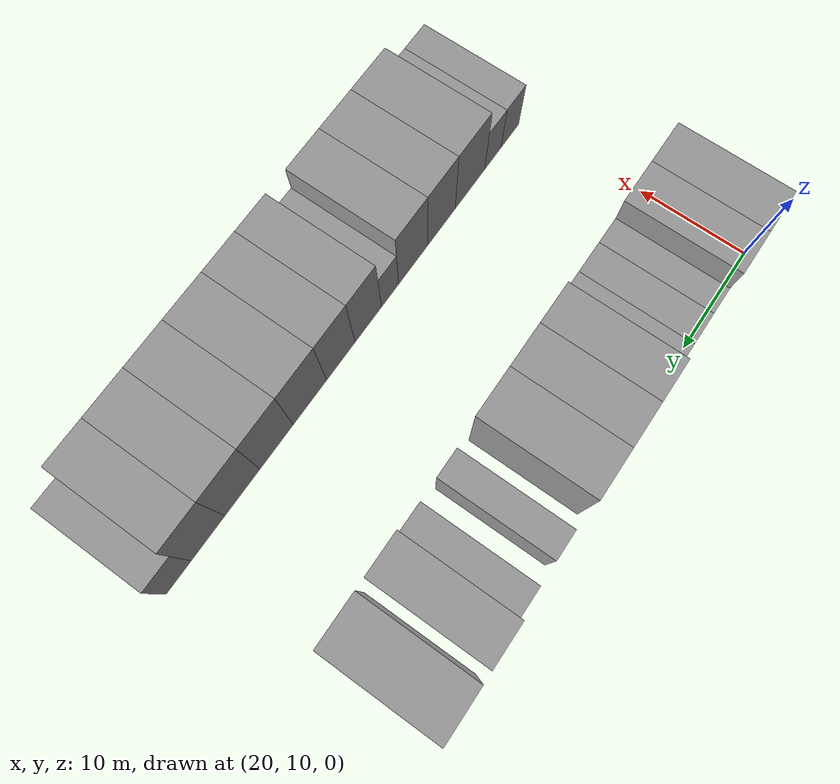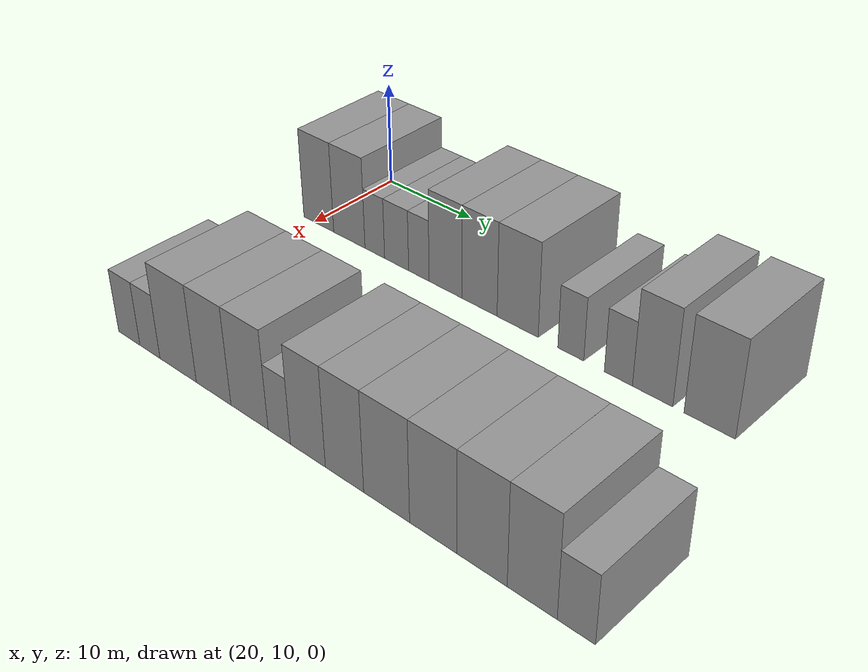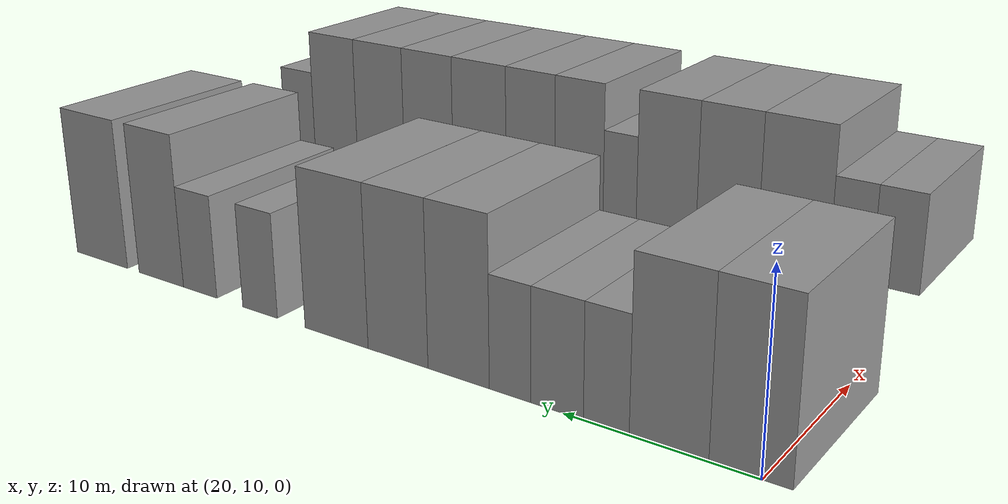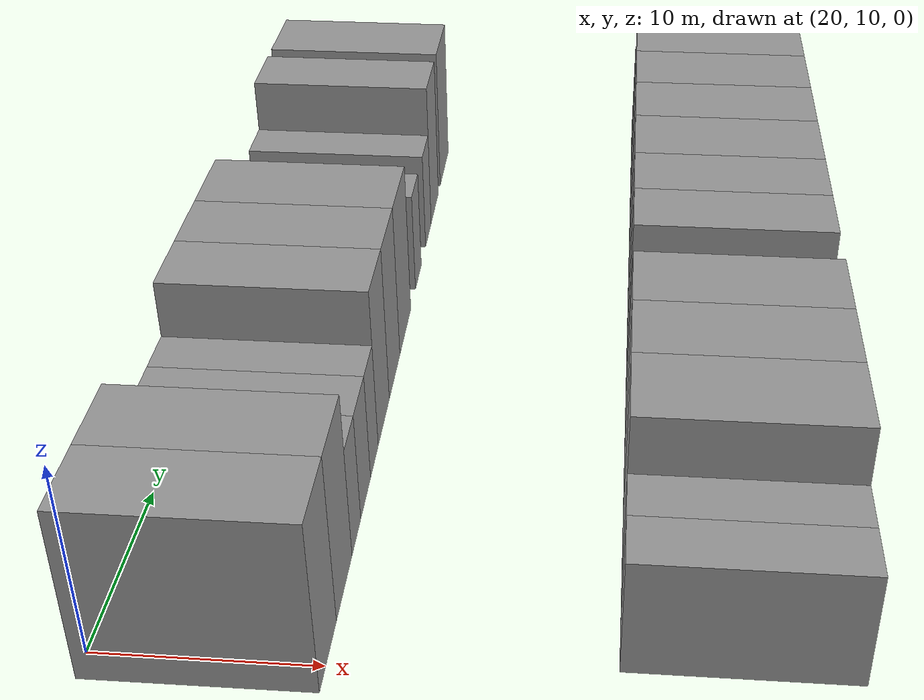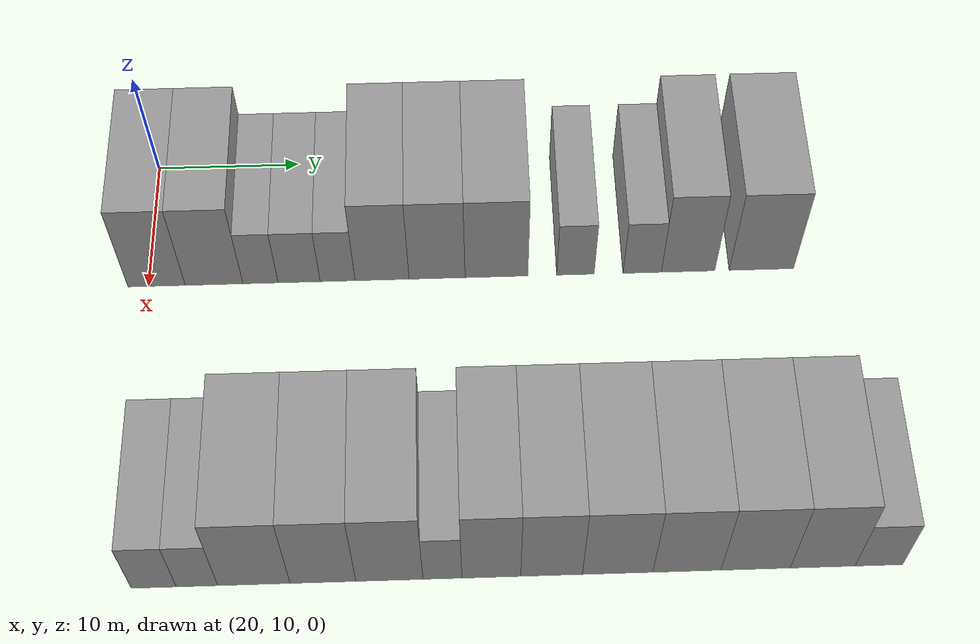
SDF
<sdf version="1.6">
 <world name="default">
  <model name="building_47">
   <static>1</static>
   <pose>25.0000 10.5509 0 0.000000 0.000000 0.000000</pose>
   <link name="link">
    <pose>0 0 4.50 0 0 0</pose>
    <collision name="collision"><geometry><box><size>10.0000 3.9219 9.0000</size></box></geometry></collision>
    <visual name="visual">
     <cast_shadows>0</cast_shadows>
     <geometry><box><size>10.0000 3.9219 9.0000</size></box></geometry>
     <material>
      <script>
       <uri>model://grey_wall/materials/scripts</uri>
       <uri>model://grey_wall/materials/textures</uri>
       <name>vrc/grey_wall</name>
      </script>
     </material>
    </visual>
   </link>
  </model>
  <model name="building_48">
   <static>1</static>
   <pose>25.0000 14.4988 0 0.000000 0.000000 0.000000</pose>
   <link name="link">
    <pose>0 0 4.50 0 0 0</pose>
    <collision name="collision"><geometry><box><size>10.0000 3.9739 9.0000</size></box></geometry></collision>
    <visual name="visual">
     <cast_shadows>0</cast_shadows>
     <geometry><box><size>10.0000 3.9739 9.0000</size></box></geometry>
     <material>
      <script>
       <uri>model://grey_wall/materials/scripts</uri>
       <uri>model://grey_wall/materials/textures</uri>
       <name>vrc/grey_wall</name>
      </script>
     </material>
    </visual>
   </link>
  </model>
  <model name="building_49">
   <static>1</static>
   <pose>25.0000 17.6950 0 0.000000 0.000000 0.000000</pose>
   <link name="link">
    <pose>0 0 3.00 0 0 0</pose>
    <collision name="collision"><geometry><box><size>10.0000 2.4185 6.0000</size></box></geometry></collision>
    <visual name="visual">
     <cast_shadows>0</cast_shadows>
     <geometry><box><size>10.0000 2.4185 6.0000</size></box></geometry>
     <material>
      <script>
       <uri>model://grey_wall/materials/scripts</uri>
       <uri>model://grey_wall/materials/textures</uri>
       <name>vrc/grey_wall</name>
      </script>
     </material>
    </visual>
   </link>
  </model>
  <model name="building_50">
   <static>1</static>
   <pose>25.0000 20.3509 0 0.000000 0.000000 0.000000</pose>
   <link name="link">
    <pose>0 0 3.00 0 0 0</pose>
    <collision name="collision"><geometry><box><size>10.0000 2.8933 6.0000</size></box></geometry></collision>
    <visual name="visual">
     <cast_shadows>0</cast_shadows>
     <geometry><box><size>10.0000 2.8933 6.0000</size></box></geometry>
     <material>
      <script>
       <uri>model://grey_wall/materials/scripts</uri>
       <uri>model://grey_wall/materials/textures</uri>
       <name>vrc/grey_wall</name>
      </script>
     </material>
    </visual>
   </link>
  </model>
  <model name="building_51">
   <static>1</static>
   <pose>25.0000 22.9984 0 0.000000 0.000000 0.000000</pose>
   <link name="link">
    <pose>0 0 3.00 0 0 0</pose>
    <collision name="collision"><geometry><box><size>10.0000 2.4018 6.0000</size></box></geometry></collision>
    <visual name="visual">
     <cast_shadows>0</cast_shadows>
     <geometry><box><size>10.0000 2.4018 6.0000</size></box></geometry>
     <material>
      <script>
       <uri>model://grey_wall/materials/scripts</uri>
       <uri>model://grey_wall/materials/textures</uri>
       <name>vrc/grey_wall</name>
      </script>
     </material>
    </visual>
   </link>
  </model>
  <model name="building_52">
   <static>1</static>
   <pose>25.0000 26.0617 0 0.000000 0.000000 0.000000</pose>
   <link name="link">
    <pose>0 0 4.50 0 0 0</pose>
    <collision name="collision"><geometry><box><size>10.0000 3.7248 9.0000</size></box></geometry></collision>
    <visual name="visual">
     <cast_shadows>0</cast_shadows>
     <geometry><box><size>10.0000 3.7248 9.0000</size></box></geometry>
     <material>
      <script>
       <uri>model://grey_wall/materials/scripts</uri>
       <uri>model://grey_wall/materials/textures</uri>
       <name>vrc/grey_wall</name>
      </script>
     </material>
    </visual>
   </link>
  </model>
  <model name="building_53">
   <static>1</static>
   <pose>25.0000 29.8570 0 0.000000 0.000000 0.000000</pose>
   <link name="link">
    <pose>0 0 4.50 0 0 0</pose>
    <collision name="collision"><geometry><box><size>10.0000 3.8659 9.0000</size></box></geometry></collision>
    <visual name="visual">
     <cast_shadows>0</cast_shadows>
     <geometry><box><size>10.0000 3.8659 9.0000</size></box></geometry>
     <material>
      <script>
       <uri>model://grey_wall/materials/scripts</uri>
       <uri>model://grey_wall/materials/textures</uri>
       <name>vrc/grey_wall</name>
      </script>
     </material>
    </visual>
   </link>
  </model>
  <model name="building_54">
   <static>1</static>
   <pose>25.0000 33.9565 0 0.000000 0.000000 0.000000</pose>
   <link name="link">
    <pose>0 0 4.50 0 0 0</pose>
    <collision name="collision"><geometry><box><size>10.0000 4.3330 9.0000</size></box></geometry></collision>
    <visual name="visual">
     <cast_shadows>0</cast_shadows>
     <geometry><box><size>10.0000 4.3330 9.0000</size></box></geometry>
     <material>
      <script>
       <uri>model://grey_wall/materials/scripts</uri>
       <uri>model://grey_wall/materials/textures</uri>
       <name>vrc/grey_wall</name>
      </script>
     </material>
    </visual>
   </link>
  </model>
  <model name="building_55">
   <static>1</static>
   <pose>25.0000 39.4166 0 0.000000 0.000000 0.000000</pose>
   <link name="link">
    <pose>0 0 3.00 0 0 0</pose>
    <collision name="collision"><geometry><box><size>10.0000 2.5872 6.0000</size></box></geometry></collision>
    <visual name="visual">
     <cast_shadows>0</cast_shadows>
     <geometry><box><size>10.0000 2.5872 6.0000</size></box></geometry>
     <material>
      <script>
       <uri>model://grey_wall/materials/scripts</uri>
       <uri>model://grey_wall/materials/textures</uri>
       <name>vrc/grey_wall</name>
      </script>
     </material>
    </visual>
   </link>
  </model>
  <model name="building_56">
   <static>1</static>
   <pose>25.0000 44.0428 0 0.000000 0.000000 0.000000</pose>
   <link name="link">
    <pose>0 0 3.00 0 0 0</pose>
    <collision name="collision"><geometry><box><size>10.0000 2.6652 6.0000</size></box></geometry></collision>
    <visual name="visual">
     <cast_shadows>0</cast_shadows>
     <geometry><box><size>10.0000 2.6652 6.0000</size></box></geometry>
     <material>
      <script>
       <uri>model://grey_wall/materials/scripts</uri>
       <uri>model://grey_wall/materials/textures</uri>
       <name>vrc/grey_wall</name>
      </script>
     </material>
    </visual>
   </link>
  </model>
  <model name="building_57">
   <static>1</static>
   <pose>25.0000 47.2270 0 0.000000 0.000000 0.000000</pose>
   <link name="link">
    <pose>0 0 4.50 0 0 0</pose>
    <collision name="collision"><geometry><box><size>10.0000 3.7030 9.0000</size></box></geometry></collision>
    <visual name="visual">
     <cast_shadows>0</cast_shadows>
     <geometry><box><size>10.0000 3.7030 9.0000</size></box></geometry>
     <material>
      <script>
       <uri>model://grey_wall/materials/scripts</uri>
       <uri>model://grey_wall/materials/textures</uri>
       <name>vrc/grey_wall</name>
      </script>
     </material>
    </visual>
   </link>
  </model>
  <model name="building_58">
   <static>1</static>
   <pose>25.0000 52.3160 0 0.000000 0.000000 0.000000</pose>
   <link name="link">
    <pose>0 0 4.50 0 0 0</pose>
    <collision name="collision"><geometry><box><size>10.0000 4.4752 9.0000</size></box></geometry></collision>
    <visual name="visual">
     <cast_shadows>0</cast_shadows>
     <geometry><box><size>10.0000 4.4752 9.0000</size></box></geometry>
     <material>
      <script>
       <uri>model://grey_wall/materials/scripts</uri>
       <uri>model://grey_wall/materials/textures</uri>
       <name>vrc/grey_wall</name>
      </script>
     </material>
    </visual>
   </link>
  </model>
  <model name="building_152">
   <static>1</static>
   <pose>47.0000 11.9845 0 0.000000 0.000000 0.000000</pose>
   <link name="link">
    <pose>0 0 3.00 0 0 0</pose>
    <collision name="collision"><geometry><box><size>10.0000 2.7790 6.0000</size></box></geometry></collision>
    <visual name="visual">
     <cast_shadows>0</cast_shadows>
     <geometry><box><size>10.0000 2.7790 6.0000</size></box></geometry>
     <material>
      <script>
       <uri>model://grey_wall/materials/scripts</uri>
       <uri>model://grey_wall/materials/textures</uri>
       <name>vrc/grey_wall</name>
      </script>
     </material>
    </visual>
   </link>
  </model>
  <model name="building_153">
   <static>1</static>
   <pose>47.0000 14.6560 0 0.000000 0.000000 0.000000</pose>
   <link name="link">
    <pose>0 0 3.00 0 0 0</pose>
    <collision name="collision"><geometry><box><size>10.0000 2.5641 6.0000</size></box></geometry></collision>
    <visual name="visual">
     <cast_shadows>0</cast_shadows>
     <geometry><box><size>10.0000 2.5641 6.0000</size></box></geometry>
     <material>
      <script>
       <uri>model://grey_wall/materials/scripts</uri>
       <uri>model://grey_wall/materials/textures</uri>
       <name>vrc/grey_wall</name>
      </script>
     </material>
    </visual>
   </link>
  </model>
  <model name="building_154">
   <static>1</static>
   <pose>47.0000 18.1766 0 0.000000 0.000000 0.000000</pose>
   <link name="link">
    <pose>0 0 4.50 0 0 0</pose>
    <collision name="collision"><geometry><box><size>10.0000 4.4769 9.0000</size></box></geometry></collision>
    <visual name="visual">
     <cast_shadows>0</cast_shadows>
     <geometry><box><size>10.0000 4.4769 9.0000</size></box></geometry>
     <material>
      <script>
       <uri>model://grey_wall/materials/scripts</uri>
       <uri>model://grey_wall/materials/textures</uri>
       <name>vrc/grey_wall</name>
      </script>
     </material>
    </visual>
   </link>
  </model>
  <model name="building_155">
   <static>1</static>
   <pose>47.0000 22.4522 0 0.000000 0.000000 0.000000</pose>
   <link name="link">
    <pose>0 0 4.50 0 0 0</pose>
    <collision name="collision"><geometry><box><size>10.0000 4.0743 9.0000</size></box></geometry></collision>
    <visual name="visual">
     <cast_shadows>0</cast_shadows>
     <geometry><box><size>10.0000 4.0743 9.0000</size></box></geometry>
     <material>
      <script>
       <uri>model://grey_wall/materials/scripts</uri>
       <uri>model://grey_wall/materials/textures</uri>
       <name>vrc/grey_wall</name>
      </script>
     </material>
    </visual>
   </link>
  </model>
  <model name="building_156">
   <static>1</static>
   <pose>47.0000 26.5751 0 0.000000 0.000000 0.000000</pose>
   <link name="link">
    <pose>0 0 4.50 0 0 0</pose>
    <collision name="collision"><geometry><box><size>10.0000 4.1716 9.0000</size></box></geometry></collision>
    <visual name="visual">
     <cast_shadows>0</cast_shadows>
     <geometry><box><size>10.0000 4.1716 9.0000</size></box></geometry>
     <material>
      <script>
       <uri>model://grey_wall/materials/scripts</uri>
       <uri>model://grey_wall/materials/textures</uri>
       <name>vrc/grey_wall</name>
      </script>
     </material>
    </visual>
   </link>
  </model>
  <model name="building_157">
   <static>1</static>
   <pose>47.0000 29.8698 0 0.000000 0.000000 0.000000</pose>
   <link name="link">
    <pose>0 0 3.00 0 0 0</pose>
    <collision name="collision"><geometry><box><size>10.0000 2.4178 6.0000</size></box></geometry></collision>
    <visual name="visual">
     <cast_shadows>0</cast_shadows>
     <geometry><box><size>10.0000 2.4178 6.0000</size></box></geometry>
     <material>
      <script>
       <uri>model://grey_wall/materials/scripts</uri>
       <uri>model://grey_wall/materials/textures</uri>
       <name>vrc/grey_wall</name>
      </script>
     </material>
    </visual>
   </link>
  </model>
  <model name="building_158">
   <static>1</static>
   <pose>47.0000 32.9076 0 0.000000 0.000000 0.000000</pose>
   <link name="link">
    <pose>0 0 4.50 0 0 0</pose>
    <collision name="collision"><geometry><box><size>10.0000 3.6577 9.0000</size></box></geometry></collision>
    <visual name="visual">
     <cast_shadows>0</cast_shadows>
     <geometry><box><size>10.0000 3.6577 9.0000</size></box></geometry>
     <material>
      <script>
       <uri>model://grey_wall/materials/scripts</uri>
       <uri>model://grey_wall/materials/textures</uri>
       <name>vrc/grey_wall</name>
      </script>
     </material>
    </visual>
   </link>
  </model>
  <model name="building_159">
   <static>1</static>
   <pose>47.0000 36.6564 0 0.000000 0.000000 0.000000</pose>
   <link name="link">
    <pose>0 0 4.50 0 0 0</pose>
    <collision name="collision"><geometry><box><size>10.0000 3.8399 9.0000</size></box></geometry></collision>
    <visual name="visual">
     <cast_shadows>0</cast_shadows>
     <geometry><box><size>10.0000 3.8399 9.0000</size></box></geometry>
     <material>
      <script>
       <uri>model://grey_wall/materials/scripts</uri>
       <uri>model://grey_wall/materials/textures</uri>
       <name>vrc/grey_wall</name>
      </script>
     </material>
    </visual>
   </link>
  </model>
  <model name="building_160">
   <static>1</static>
   <pose>47.0000 40.7709 0 0.000000 0.000000 0.000000</pose>
   <link name="link">
    <pose>0 0 4.50 0 0 0</pose>
    <collision name="collision"><geometry><box><size>10.0000 4.3893 9.0000</size></box></geometry></collision>
    <visual name="visual">
     <cast_shadows>0</cast_shadows>
     <geometry><box><size>10.0000 4.3893 9.0000</size></box></geometry>
     <material>
      <script>
       <uri>model://grey_wall/materials/scripts</uri>
       <uri>model://grey_wall/materials/textures</uri>
       <name>vrc/grey_wall</name>
      </script>
     </material>
    </visual>
   </link>
  </model>
  <model name="building_161">
   <static>1</static>
   <pose>47.0000 45.0931 0 0.000000 0.000000 0.000000</pose>
   <link name="link">
    <pose>0 0 4.50 0 0 0</pose>
    <collision name="collision"><geometry><box><size>10.0000 4.2550 9.0000</size></box></geometry></collision>
    <visual name="visual">
     <cast_shadows>0</cast_shadows>
     <geometry><box><size>10.0000 4.2550 9.0000</size></box></geometry>
     <material>
      <script>
       <uri>model://grey_wall/materials/scripts</uri>
       <uri>model://grey_wall/materials/textures</uri>
       <name>vrc/grey_wall</name>
      </script>
     </material>
    </visual>
   </link>
  </model>
  <model name="building_162">
   <static>1</static>
   <pose>47.0000 49.3869 0 0.000000 0.000000 0.000000</pose>
   <link name="link">
    <pose>0 0 4.50 0 0 0</pose>
    <collision name="collision"><geometry><box><size>10.0000 4.3328 9.0000</size></box></geometry></collision>
    <visual name="visual">
     <cast_shadows>0</cast_shadows>
     <geometry><box><size>10.0000 4.3328 9.0000</size></box></geometry>
     <material>
      <script>
       <uri>model://grey_wall/materials/scripts</uri>
       <uri>model://grey_wall/materials/textures</uri>
       <name>vrc/grey_wall</name>
      </script>
     </material>
    </visual>
   </link>
  </model>
  <model name="building_163">
   <static>1</static>
   <pose>47.0000 53.5898 0 0.000000 0.000000 0.000000</pose>
   <link name="link">
    <pose>0 0 4.50 0 0 0</pose>
    <collision name="collision"><geometry><box><size>10.0000 4.0729 9.0000</size></box></geometry></collision>
    <visual name="visual">
     <cast_shadows>0</cast_shadows>
     <geometry><box><size>10.0000 4.0729 9.0000</size></box></geometry>
     <material>
      <script>
       <uri>model://grey_wall/materials/scripts</uri>
       <uri>model://grey_wall/materials/textures</uri>
       <name>vrc/grey_wall</name>
      </script>
     </material>
    </visual>
   </link>
  </model>
  <model name="building_164">
   <static>1</static>
   <pose>47.0000 57.1146 0 0.000000 0.000000 0.000000</pose>
   <link name="link">
    <pose>0 0 3.00 0 0 0</pose>
    <collision name="collision"><geometry><box><size>10.0000 2.9767 6.0000</size></box></geometry></collision>
    <visual name="visual">
     <cast_shadows>0</cast_shadows>
     <geometry><box><size>10.0000 2.9767 6.0000</size></box></geometry>
     <material>
      <script>
       <uri>model://grey_wall/materials/scripts</uri>
       <uri>model://grey_wall/materials/textures</uri>
       <name>vrc/grey_wall</name>
      </script>
     </material>
    </visual>
   </link>
  </model>
 </world>
</sdf>
